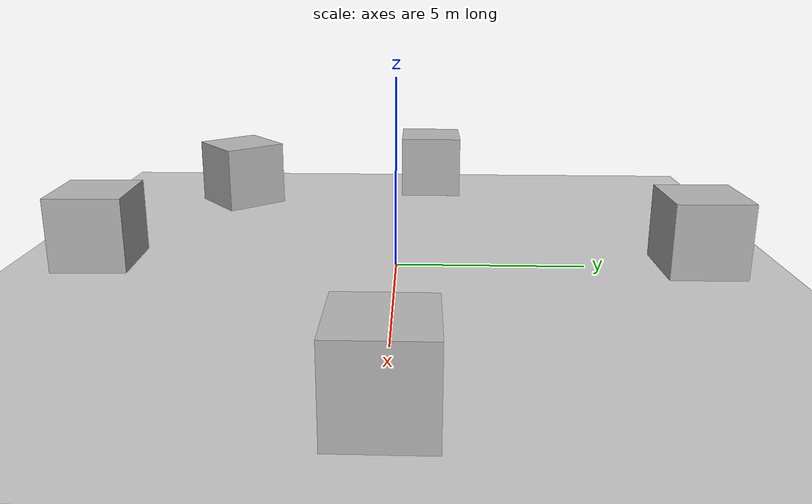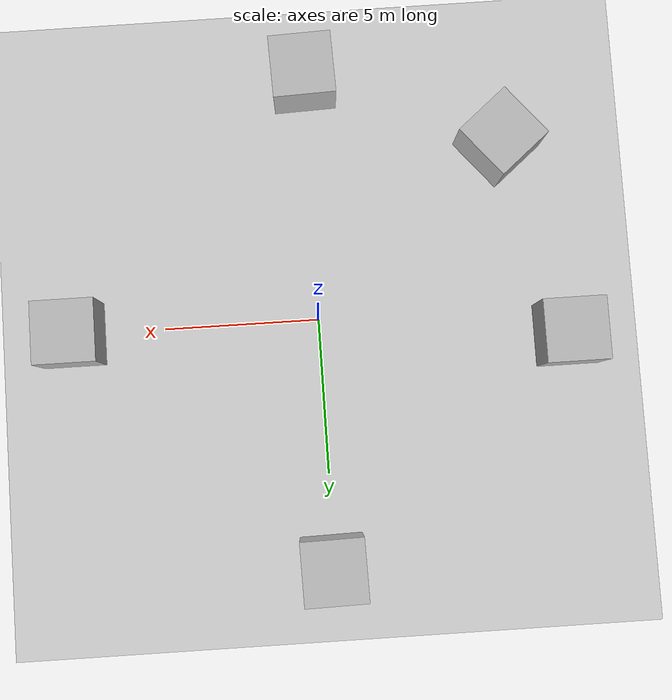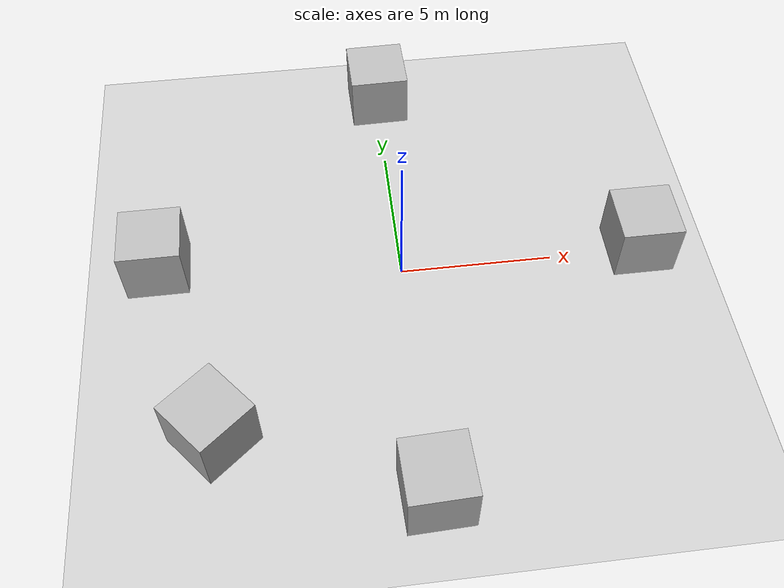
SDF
<sdf version="1.7">
 <world name="default">
  <light name="sun" type="directional">
   <pose>0 0 10 0 -0 0</pose>
   <diffuse>0.8 0.8 0.8 1</diffuse>
   <specular>0.2 0.2 0.2 1</specular>
   <attenuation>
    <range>1000</range>
    <constant>0.9</constant>
    <linear>0.01</linear>
    <quadratic>0.001</quadratic>
   </attenuation>
   <direction>-0.5 0.1 -0.9</direction>
   <spot><inner_angle>0</inner_angle><outer_angle>0</outer_angle><falloff>0</falloff></spot>
  </light>
  <model name="ground_plane">
   <static>1</static>
   <link name="link">
    <collision name="collision">
     <geometry><plane><normal>0 0 1</normal><size>100 100</size></plane></geometry>
     <surface>
      <contact><collide_bitmask>65535</collide_bitmask></contact>
      <friction><ode><mu>100</mu><mu2>50</mu2></ode></friction>
     </surface>
    </collision>
    <visual name="visual">
     <cast_shadows>0</cast_shadows>
     <geometry><plane><normal>0 0 1</normal><size>100 100</size></plane></geometry>
     <material>
      <script><uri>file://media/materials/scripts/gazebo.material</uri><name>Gazebo/Grey</name></script>
     </material>
    </visual>
   </link>
  </model>
  <gravity>0 0 -9.8</gravity>
  <magnetic_field>6e-06 2.3e-05 -4.2e-05</magnetic_field>
  <atmosphere type="adiabatic"/>
  <physics type="ode">
   <max_step_size>0.001</max_step_size>
   <real_time_factor>1</real_time_factor>
   <real_time_update_rate>1000</real_time_update_rate>
  </physics>
  <scene><ambient>0.4 0.4 0.4 1</ambient><background>0.7 0.7 0.7 1</background><shadows>1</shadows></scene>
  <audio><device>default</device></audio>
  <spherical_coordinates>
   <surface_model>EARTH_WGS84</surface_model>
   <latitude_deg>0</latitude_deg>
   <longitude_deg>0</longitude_deg>
   <elevation>0</elevation>
   <heading_deg>0</heading_deg>
  </spherical_coordinates>
  <model name="maker1">
   <static>1</static>
   <link name="link">
    <visual name="visual"><geometry><mesh><uri>model://maker1/meshes/maker1.obj</uri></mesh></geometry></visual>
    <collision name="collision">
     <geometry><mesh><uri>model://maker1/meshes/maker1.obj</uri></mesh></geometry>
    </collision>
   </link>
   <pose>-7.99335 0.988823 1.02336 0 0 -1.57102</pose>
  </model>
  <model name="maker1_clone">
   <static>1</static>
   <link name="link">
    <visual name="visual"><geometry><mesh><uri>model://maker1/meshes/maker1.obj</uri></mesh></geometry></visual>
    <collision name="collision">
     <geometry><mesh><uri>model://maker1/meshes/maker1.obj</uri></mesh></geometry>
    </collision>
   </link>
   <pose>0.029984 7.93945 1.02336 0 0 -3.12485</pose>
  </model>
  <model name="maker1_clone_clone">
   <static>1</static>
   <link name="link">
    <visual name="visual"><geometry><mesh><uri>model://maker1/meshes/maker1.obj</uri></mesh></geometry></visual>
    <collision name="collision">
     <geometry><mesh><uri>model://maker1/meshes/maker1.obj</uri></mesh></geometry>
    </collision>
   </link>
   <pose>0.00985 -8.00325 1.02336 0 -0 0.033193</pose>
  </model>
  <model name="maker1_clone_0">
   <static>1</static>
   <link name="link">
    <visual name="visual"><geometry><mesh><uri>model://maker1/meshes/maker1.obj</uri></mesh></geometry></visual>
    <collision name="collision">
     <geometry><mesh><uri>model://maker1/meshes/maker1.obj</uri></mesh></geometry>
    </collision>
   </link>
   <pose>7.97345 0.011178 1.02336 0 -0 1.56848</pose>
  </model>
  <model name="maker1_clone_1">
   <static>1</static>
   <link name="link">
    <visual name="visual"><geometry><mesh><uri>model://maker1/meshes/maker1.obj</uri></mesh></geometry></visual>
    <collision name="collision">
     <geometry><mesh><uri>model://maker1/meshes/maker1.obj</uri></mesh></geometry>
    </collision>
   </link>
   <pose>-6.22577 -5.42121 1.02336 0 0 -0.876111</pose>
  </model>
 </world>
</sdf>
